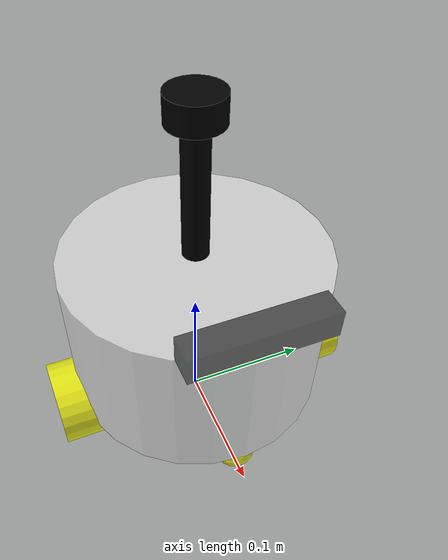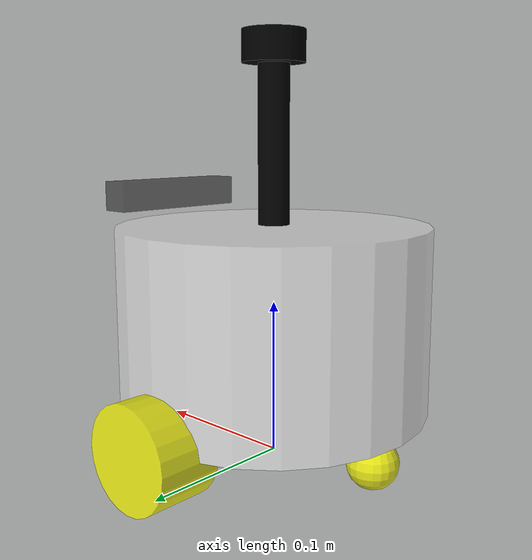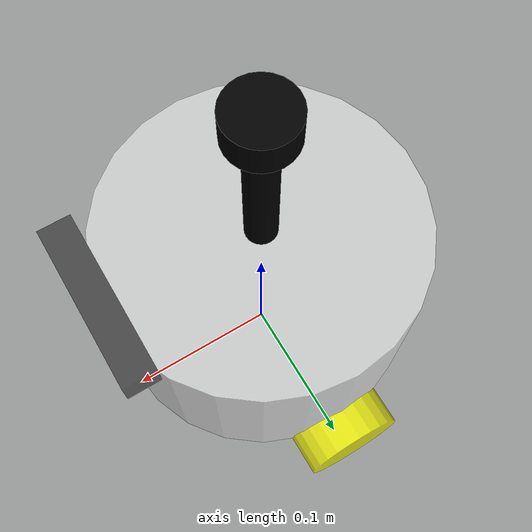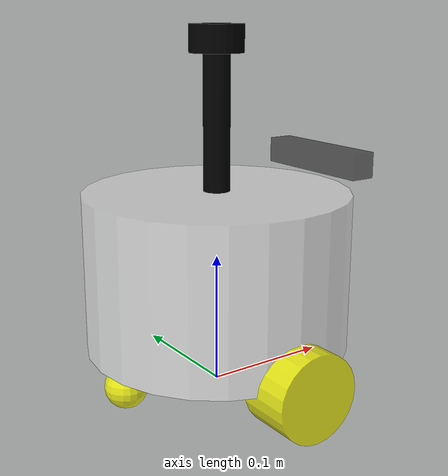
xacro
<?xml version="1.0"?>
<robot xmlns:xacro="http://www.ros.org/wiki/xacro"  name="fengbot">
<!-- 基础部分 -->
<xacro:include filename="$(find fengbot_description)/urdf/fengbot/base.urdf.xacro"/>

<!-- 传感器部分 -->
<xacro:include filename="$(find fengbot_description)/urdf/fengbot/sensor/imu.urdf.xacro"/>
<xacro:include filename="$(find fengbot_description)/urdf/fengbot/sensor/camera.urdf.xacro"/>
<xacro:include filename="$(find fengbot_description)/urdf/fengbot/sensor/laser.urdf.xacro"/>

<!-- 执行器部分 -->
<xacro:include filename="$(find fengbot_description)/urdf/fengbot/actuator/wheel.urdf.xacro"/>
<xacro:include filename="$(find fengbot_description)/urdf/fengbot/actuator/caster.urdf.xacro"/>

<!-- 插件部分 -->
<xacro:include filename="$(find fengbot_description)/urdf/fengbot/plugins/gazebo_sensor_plugin.xacro"/>
<xacro:include filename="$(find fengbot_description)/urdf/fengbot/fengbot.ros2_control.xacro"/>

<xacro:base_xacro length="0.12" radius="0.10"/>
<xacro:imu_xacro xyz="0.0 0.0 0.02"/>
<xacro:camera_xacro xyz="0.1 0.0 0.075"/>
<xacro:laser_xacro xyz="0.0 0.0 0.11"/>

<xacro:caster_xacro caster_name="front_caster" xyz="0.08 0 -0.076"/>
<xacro:caster_xacro caster_name="back_caster" xyz="-0.08 0 -0.076"/>
<xacro:wheel_xacro wheel_name="left_wheel" xyz="0 0.1 -0.06"/>
<xacro:wheel_xacro wheel_name="right_wheel" xyz="0 -0.1 -0.06"/>

<xacro:gazebo_sensor_plugin/>
<xacro:fengbot_ros2_control/>
</robot>

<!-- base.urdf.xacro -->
<robot xmlns:xacro="http://www.ros.org/wiki/xacro"  >
<xacro:include filename="$(find fengbot_description)/urdf/fengbot/common_inertia.xacro"/>

<xacro:macro name="base_xacro" params="length radius">
 <link name ="base_footprint"/>
 <!-- 机器人身体部分 -->
 <link name="base_link">
     <!-- 部件外观描述 -->
     <visual>
       <!-- 沿着自己几何中心的偏移和旋转量 -->
        <origin xyz="0.0 0.0 0.0" rpy="0.0 0.0 0.0"/>
        <!-- 几何形状 -->
        <geometry>
        <!-- 圆柱体  半径0.1米 高度0.12米-->
            <cylinder radius="${radius}" length="${length}"/>
        </geometry>
        <!-- 材质颜色 -->
        <material name="white">
            <color rgba="1.0 1.0 1.0 0.5"/>
        </material>
     </visual>
     <collision>
       <!-- 沿着自己几何中心的偏移和旋转量 -->
        <origin xyz="0.0 0.0 0.0" rpy="0.0 0.0 0.0"/>
        <!-- 几何形状 -->
        <geometry>
        <!-- 圆柱体  半径0.1米 高度0.12米-->
            <cylinder radius="${radius}" length="${length}"/>
        </geometry>
        <!-- 材质颜色 -->
        <material name="white">
            <color rgba="1.0 1.0 1.0 0.5"/>
        </material>
     </collision>
     <xacro:cylinder_inertia m="1" r="${radius}" h="${length}"/>
    </link>
    <joint name="base_footjoint" type="fixed">
      <origin xyz="0.0 0.0 ${length/2+0.032-0.001}" rpy="0.0 0.0 0.0"/>
      <parent link="base_footprint"/>
      <child link="base_link"/>
    </joint>
  </xacro:macro>
</robot>

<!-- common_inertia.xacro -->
<robot xmlns:xacro="http://ros.org/wiki/xacro">
    <xacro:macro name="box_inertia" params="m d w h">
        <inertial>
            <mass value="${m}"/>
            <inertia ixx="${(m/12) * (w*w + h*h)}" ixy="0.0" ixz="0.0" iyy="${(m/12) * (d*d + h*h)}" iyz="0.0" izz="${(m/12) * (d*d + w*w) }"/>
        </inertial>
    </xacro:macro>

    <xacro:macro name="cylinder_inertia" params="m r h">
        <inertial>
            <mass value="${m}"/>
            <inertia ixx="${(m/12) * (3*r*r + h*h)}" ixy="0.0" ixz="0.0" iyy="${(m/12) * (3*r*r+ h*h)}" iyz="0.0" izz="${(m/2) * (r*r) }"/>
        </inertial>
    </xacro:macro>

    <xacro:macro name="sphere_inertia" params="m r">
        <inertial>
            <mass value="${m}"/>
            <inertia ixx="${(2*m/5) * (r*r)}" ixy="0.0" ixz="0.0" iyy="${(2*m/5) * (r*r)}" iyz="0.0" izz="${(2*m/5) * (r*r)}"/>
        </inertial>
    </xacro:macro>
    </robot>

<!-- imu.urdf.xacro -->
<robot xmlns:xacro="http://www.ros.org/wiki/xacro" >
<xacro:include filename="$(find fengbot_description)/urdf/fengbot/common_inertia.xacro"/>

<!-- 机器人的imu部件，惯性测量传感器 -->
<xacro:macro name="imu_xacro"  params="xyz"  >
<link name="imu_link">
     <!-- 部件外观描述 -->
     <visual>
      <!--沿着自己几何中心的偏移和旋转量 -->
        <origin xyz="0.0 0.0 0.0" rpy="0.0 0.0 0.0"/>
        <!-- 几何形状 -->
        <geometry>
                <box size="0.02 0.02 0.02"/>
        </geometry>

        <!-- 材质颜色 -->
        <material name="black">
            <color rgba="0.0 0.0 0.0 0.5"/>
        </material>
     </visual>
     <collision>
         <origin xyz="0.0 0.0 0.0" rpy="0.0 0.0 0.0"/>
        <!-- 几何形状 -->
        <geometry>
                <box size="0.02 0.02 0.02"/>
        </geometry>

        <!-- 材质颜色 -->
        <material name="black">
            <color rgba="0.0 0.0 0.0 0.5"/>
        </material>
     </collision>
     <xacro:box_inertia m="0.05" d="0.02"  w="0.02"  h="0.02"/>
    </link>

    <!-- 机器人的关节 用于组合机器人的部件-->
    <joint name="imu_joint" type="fixed">
        <parent link="base_link"/>
        <child link="imu_link"/>
        <origin xyz="${xyz}" rpy="0.0 0.0 0.0"/>
    </joint>
</xacro:macro>

</robot>

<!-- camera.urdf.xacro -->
<robot xmlns:xacro="http://www.ros.org/wiki/xacro" >
<xacro:include filename="$(find fengbot_description)/urdf/fengbot/common_inertia.xacro"/>

<xacro:macro name="camera_xacro"  params="xyz"  >
<link name="camera_link">
     <!-- 部件外观描述 -->
     <visual>
      <!--沿着自己几何中心的偏移和旋转量 -->
        <origin xyz="0.0 0.0 0.0" rpy="0.0 0.0 0.0"/>
        <!-- 几何形状 -->
        <geometry>
                <box size="0.02 0.10 0.02"/>
        </geometry>

        <!-- 材质颜色 -->
        <material name="black">
            <color rgba="0.0 0.0 0.0 0.5"/>
        </material>
     </visual>
     <collision>
        <origin xyz="0.0 0.0 0.0" rpy="0.0 0.0 0.0"/>
        <!-- 几何形状 -->
        <geometry>
                <box size="0.02 0.10 0.02"/>
        </geometry>

        <!-- 材质颜色 -->
        <material name="black">
            <color rgba="0.0 0.0 0.0 0.5"/>
        </material>
     </collision>
    <xacro:box_inertia m="0.1" d="0.02"  w="0.1"  h="0.02"/>
    </link>

    <link name="camera_optical_link">
    </link>

    <!-- 机器人的关节 用于组合机器人的部件-->
    <joint name="camera_joint" type="fixed">
        <parent link="base_link"/>
        <child link="camera_link"/>
        <origin xyz="${xyz}" rpy="0.0 0.0 0.0"/>
    </joint>

     <joint name="camera_optical_joint" type="fixed">
        <parent link="camera_link"/>
        <child link="camera_optical_link"/>
        <origin xyz="0 0 0" rpy="${-pi/2} 0.0 ${-pi/2}"/>
    </joint>

</xacro:macro>

</robot>

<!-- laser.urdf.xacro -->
<robot xmlns:xacro="http://www.ros.org/wiki/xacro" >
<xacro:include filename="$(find fengbot_description)/urdf/fengbot/common_inertia.xacro"/>

<xacro:macro name="laser_xacro"  params="xyz" >
<!-- 雷达支撑杆 -->
    <link name="laser_cylinder_link">
     <!-- 部件外观描述 -->
     <visual>
      <!--沿着自己几何中心的偏移和旋转量 -->
        <origin xyz="0.0 0.0 0.0" rpy="0.0 0.0 0.0"/>
        <!-- 几何形状 -->
        <geometry>
               <cylinder radius="0.01" length="0.1"/>
        </geometry>

        <!-- 材质颜色 -->
        <material name="black">
            <color rgba="0.0 0.0 0.0 1.0"/>
        </material>
     </visual>
   <collision>
     <origin xyz="0.0 0.0 0.0" rpy="0.0 0.0 0.0"/>
        <!-- 几何形状 -->
        <geometry>
               <cylinder radius="0.01" length="0.1"/>
        </geometry>

        <!-- 材质颜色 -->
        <material name="black">
            <color rgba="0.0 0.0 0.0 1.0"/>
        </material>
   </collision>
   <xacro:cylinder_inertia m="0.05" r="0.01" h="0.1"/>
    </link>

     <!-- 雷达 -->
     <link name="laser_link">
     <!-- 部件外观描述 -->
     <visual>
      <!--沿着自己几何中心的偏移和旋转量 -->
        <origin xyz="0.0 0.0 0.0" rpy="0.0 0.0 0.0"/>
        <!-- 几何形状 -->
        <geometry>
               <cylinder radius="0.02" length="0.02"/>
        </geometry>

        <!-- 材质颜色 -->
        <material name="black">
            <color rgba="0.0 0.0 0.0 1.0"/>
        </material>
     </visual>
     <collision>
         <origin xyz="0.0 0.0 0.0" rpy="0.0 0.0 0.0"/>
        <!-- 几何形状 -->
        <geometry>
               <cylinder radius="0.02" length="0.02"/>
        </geometry>

        <!-- 材质颜色 -->
        <material name="black">
            <color rgba="0.0 0.0 0.0 1.0"/>
        </material>
     </collision>
     <xacro:cylinder_inertia m="0.1" r="0.02" h="0.02"/>
    </link>

    <!-- 机器人的关节 用于组合机器人的部件-->
    <joint name="laser_joint" type="fixed">
        <parent link="laser_cylinder_link"/>
        <child link="laser_link"/>
        <origin xyz="0.0 0.0 0.06" rpy="0.0 0.0 0.0"/>
    </joint>

     <joint name="laser_cylinder_joint" type="fixed">
        <parent link="base_link"/>
        <child link="laser_cylinder_link"/>
        <origin xyz="${xyz}" rpy="0.0 0.0 0.0"/>
    </joint>

    <gazebo reference="laser_cylinder_link">
    <material> Gazebo/Black</material>
    </gazebo>

    <gazebo reference="laser_link">
    <material> Gazebo/Black</material>
    </gazebo>

</xacro:macro>

</robot>

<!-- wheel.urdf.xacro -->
<robot xmlns:xacro="http://www.ros.org/wiki/xacro" >
<xacro:include filename="$(find fengbot_description)/urdf/fengbot/common_inertia.xacro"/>

<!-- 机器人的imu部件，惯性测量传感器 -->
<xacro:macro name="wheel_xacro"  params="wheel_name xyz"  >
<link name="${wheel_name}_link">
     <!-- 部件外观描述 -->
     <visual>
      <!--坐标系沿着自己几何中心的偏移和旋转量 -->
        <origin xyz="0.0 0.0 0.0" rpy="1.57079 0.0 0.0"/>
        <!-- 几何形状 -->
        <geometry>
               <cylinder radius="0.032" length="0.04"/>
        </geometry>

        <!-- 材质颜色 -->
        <material name="yellow">
            <color rgba="1.0 1.0 0.0 0.8"/>
        </material>
     </visual>
     <collision>
           <origin xyz="0.0 0.0 0.0" rpy="1.57079 0.0 0.0"/>
        <!-- 几何形状 -->
        <geometry>
               <cylinder radius="0.032" length="0.04"/>
        </geometry>

        <!-- 材质颜色 -->
        <material name="yellow">
            <color rgba="1.0 1.0 0.0 0.8"/>
        </material>
     </collision>
     <xacro:cylinder_inertia m="0.05" r="0.032" h="0.04"/>
    </link>

    <!-- 机器人的关节 用于组合机器人的部件-->
    <joint name="${wheel_name}_joint" type="continuous">
        <parent link="base_link"/>
        <child link="${wheel_name}_link"/>
        <origin xyz="${xyz}" rpy="0.0 0.0 0.0"/>
        <axis xyz="0 1 0"/>
    </joint>

    <gazebo reference="${wheel_name}_link">
      <mu1 value="20.0"/>
      <mu2 value="20.0"/>
      <kp value="1000000000.0"/>
      <kd value="1.0"/>
    </gazebo>

</xacro:macro>

</robot>

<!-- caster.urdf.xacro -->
<robot xmlns:xacro="http://www.ros.org/wiki/xacro" >
<xacro:include filename="$(find fengbot_description)/urdf/fengbot/common_inertia.xacro"/>

<!-- 机器人的imu部件，惯性测量传感器 -->
<xacro:macro name="caster_xacro"  params="caster_name xyz"  >
<link name="${caster_name}_link">
     <!-- 部件外观描述 -->
     <visual>
      <!--坐标系沿着自己几何中心的偏移和旋转量 -->
        <origin xyz="0.0 0.0 0.0" rpy="0 0.0 0.0"/>
        <!-- 几何形状 -->
        <geometry>
              <sphere radius="0.016"/>
        </geometry>

        <!-- 材质颜色 -->
        <material name="yellow">
            <color rgba="1.0 1.0 0.0 0.8"/>
        </material>
     </visual>
     <collision>
         <origin xyz="0.0 0.0 0.0" rpy="0 0.0 0.0"/>
        <!-- 几何形状 -->
        <geometry>
              <sphere radius="0.016"/>
        </geometry>

        <!-- 材质颜色 -->
        <material name="yellow">
            <color rgba="1.0 1.0 0.0 0.8"/>
        </material>
     </collision>
     <xacro:sphere_inertia m="1" r="0.016"/>
    </link>

    <!-- 机器人的关节 用于组合机器人的部件-->
    <joint name="${caster_name}_joint" type="fixed">
        <parent link="base_link"/>
        <child link="${caster_name}_link"/>
        <origin xyz="${xyz}" rpy="0.0 0.0 0.0"/>
    </joint>

    <gazebo reference="${caster_name}_link">
      <mu1 value="0"/>
      <mu2 value="0"/>
      <kp value="1000000000.0"/>
      <kd value="1.0"/>
    </gazebo>
</xacro:macro>

</robot>
